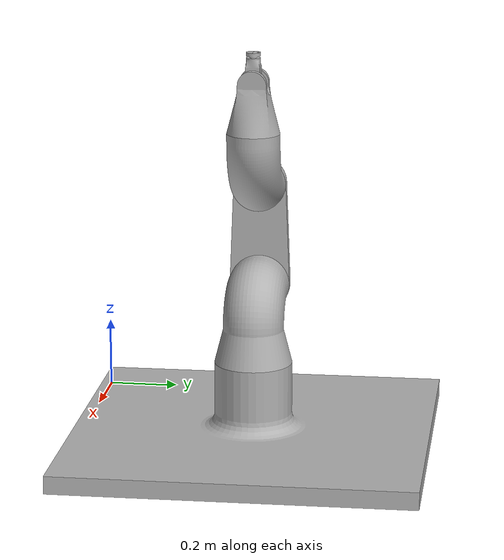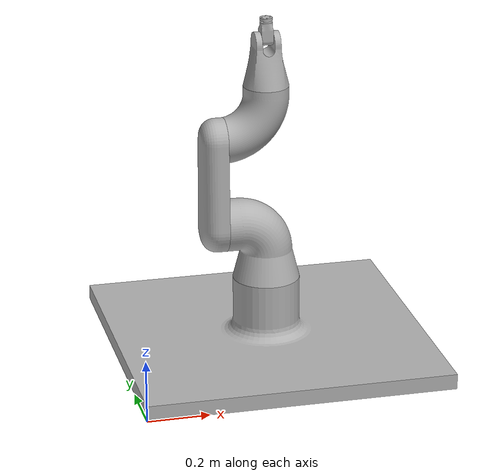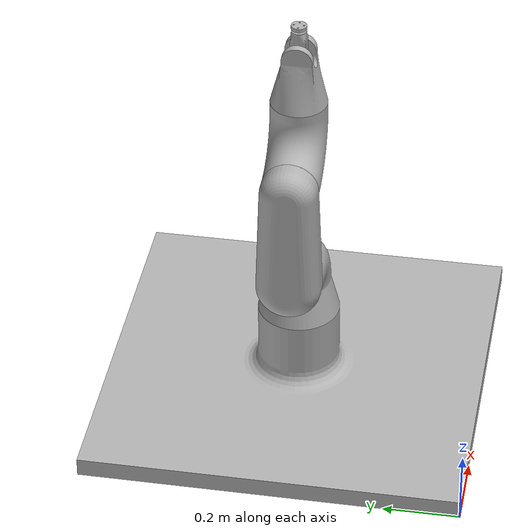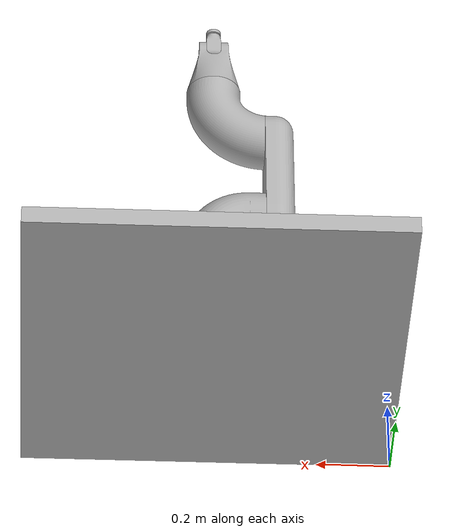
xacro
<?xml version="1.0" ?>
<robot name="g05" xmlns:xacro="http://www.ros.org/wiki/xacro">

<xacro:include filename="$(find g05)/urdf/materials.xacro" />
<xacro:include filename="$(find g05)/urdf/g05.trans" />
<xacro:include filename="$(find g05)/urdf/g05.gazebo" />

<link name="dummy">
  <pose> 0 0 0 0 0 0 </pose>
</link>

<joint name="dummy_joint" type="fixed">
  <parent link="dummy"/>
  <child link= "base_link"/>
</joint>

<link name="base_link">
  <inertial>
    <origin xyz="0.500000000000011 0.5000000000000001 0.03990961156333847" rpy="0 0 0"/>
    <mass value="449.9286565512495"/>
    <inertia ixx="33.833339" iyy="33.833339" izz="65.771249" ixy="0.0" iyz="0.0" ixz="-0.0"/>
  </inertial>
  <visual>
    <origin xyz="0 0 0" rpy="0 0 0"/>
    <geometry>
      <mesh filename="package://g05/meshes/base_link.stl" scale="0.001 0.001 0.001"/>
    </geometry>
    <material name="silver"/>
  </visual>
  <collision>
    <origin xyz="0 0 0" rpy="0 0 0"/>
    <geometry>
      <mesh filename="package://g05/meshes/base_link.stl" scale="0.001 0.001 0.001"/>
    </geometry>
  </collision>
</link>

<link name="Revolute_2_1">
  <inertial>
    <origin xyz="-0.02796233135417625 -5.434556427097448e-08 0.07271650387425044" rpy="0 0 0"/>
    <mass value="7.57485731682547"/>
    <inertia ixx="0.056149" iyy="0.066668" izz="0.04146" ixy="-0.0" iyz="-0.0" ixz="0.014556"/>
  </inertial>
  <visual>
    <origin xyz="-0.5 -0.5 -0.2875" rpy="0 0 0"/>
    <geometry>
      <mesh filename="package://g05/meshes/Revolute_2_1.stl" scale="0.001 0.001 0.001"/>
    </geometry>
    <material name="silver"/>
  </visual>
  <collision>
    <origin xyz="-0.5 -0.5 -0.2875" rpy="0 0 0"/>
    <geometry>
      <mesh filename="package://g05/meshes/Revolute_2_1.stl" scale="0.001 0.001 0.001"/>
    </geometry>
  </collision>
</link>

<link name="Revolute_3_1">
  <inertial>
    <origin xyz="0.014413868593585288 2.744690474898448e-07 0.13813231624974515" rpy="0 0 0"/>
    <mass value="4.960455877927692"/>
    <inertia ixx="0.078668" iyy="0.072525" izz="0.01127" ixy="-0.0" iyz="0.0" ixz="-0.000768"/>
  </inertial>
  <visual>
    <origin xyz="-0.312 -0.5 -0.426066" rpy="0 0 0"/>
    <geometry>
      <mesh filename="package://g05/meshes/Revolute_3_1.stl" scale="0.001 0.001 0.001"/>
    </geometry>
    <material name="silver"/>
  </visual>
  <collision>
    <origin xyz="-0.312 -0.5 -0.426066" rpy="0 0 0"/>
    <geometry>
      <mesh filename="package://g05/meshes/Revolute_3_1.stl" scale="0.001 0.001 0.001"/>
    </geometry>
  </collision>
</link>

<link name="Revolute_4_1">
  <inertial>
    <origin xyz="0.05058795204654243 2.74474345363096e-07 0.06441243873672076" rpy="0 0 0"/>
    <mass value="4.521795512874398"/>
    <inertia ixx="0.024373" iyy="0.030228" izz="0.018236" ixy="-0.0" iyz="0.0" ixz="-0.008608"/>
  </inertial>
  <visual>
    <origin xyz="-0.412 -0.5 -0.716066" rpy="0 0 0"/>
    <geometry>
      <mesh filename="package://g05/meshes/Revolute_4_1.stl" scale="0.001 0.001 0.001"/>
    </geometry>
    <material name="silver"/>
  </visual>
  <collision>
    <origin xyz="-0.412 -0.5 -0.716066" rpy="0 0 0"/>
    <geometry>
      <mesh filename="package://g05/meshes/Revolute_4_1.stl" scale="0.001 0.001 0.001"/>
    </geometry>
  </collision>
</link>

<link name="Revolute_5_1">
  <inertial>
    <origin xyz="-6.994329779241859e-07 2.7778302158498747e-07 0.010271401412828673" rpy="0 0 0"/>
    <mass value="1.5444031425616112"/>
    <inertia ixx="0.004247" iyy="0.004332" izz="0.003152" ixy="-0.0" iyz="-0.0" ixz="0.0"/>
  </inertial>
  <visual>
    <origin xyz="-0.499934 -0.5 -0.94" rpy="0 0 0"/>
    <geometry>
      <mesh filename="package://g05/meshes/Revolute_5_1.stl" scale="0.001 0.001 0.001"/>
    </geometry>
    <material name="silver"/>
  </visual>
  <collision>
    <origin xyz="-0.499934 -0.5 -0.94" rpy="0 0 0"/>
    <geometry>
      <mesh filename="package://g05/meshes/Revolute_5_1.stl" scale="0.001 0.001 0.001"/>
    </geometry>
  </collision>
</link>

<link name="end_effector_1">
  <inertial>
    <origin xyz="4.928266761905498e-07 -2.7460793233791136e-07 0.022999999999999687" rpy="0 0 0"/>
    <mass value="0.02081305133003231"/>
    <inertia ixx="4e-06" iyy="4e-06" izz="3e-06" ixy="0.0" iyz="0.0" ixz="-0.0"/>
  </inertial>
  <visual>
    <origin xyz="-0.499934 -0.5 -1.08" rpy="0 0 0"/>
    <geometry>
      <mesh filename="package://g05/meshes/end_effector_1.stl" scale="0.001 0.001 0.001"/>
    </geometry>
    <material name="silver"/>
  </visual>
  <collision>
    <origin xyz="-0.499934 -0.5 -1.08" rpy="0 0 0"/>
    <geometry>
      <mesh filename="package://g05/meshes/end_effector_1.stl" scale="0.001 0.001 0.001"/>
    </geometry>
  </collision>
</link>

<link name="Revolute_6_1">
  <inertial>
    <origin xyz="0.03497844973052605 -4.9620073327982794e-08 0.009209509656326942" rpy="0 0 0"/>
    <mass value="0.12916779249875357"/>
    <inertia ixx="6.2e-05" iyy="7.6e-05" izz="4.4e-05" ixy="0.0" iyz="0.0" ixz="-0.0"/>
  </inertial>
  <visual>
    <origin xyz="-0.464934 -0.5 -1.05" rpy="0 0 0"/>
    <geometry>
      <mesh filename="package://g05/meshes/Revolute_6_1.stl" scale="0.001 0.001 0.001"/>
    </geometry>
    <material name="silver"/>
  </visual>
  <collision>
    <origin xyz="-0.464934 -0.5 -1.05" rpy="0 0 0"/>
    <geometry>
      <mesh filename="package://g05/meshes/Revolute_6_1.stl" scale="0.001 0.001 0.001"/>
    </geometry>
  </collision>
</link>

<joint name="Revolute_1" type="continuous">
  <origin xyz="0.5 0.5 0.2875" rpy="0 0 0"/>
  <parent link="base_link"/>
  <child link="Revolute_2_1"/>
  <axis xyz="0.0 0.0 1.0"/>
</joint>

<joint name="Revolute_2" type="continuous">
  <origin xyz="-0.188 0.0 0.138566" rpy="0 0 0"/>
  <parent link="Revolute_2_1"/>
  <child link="Revolute_3_1"/>
  <axis xyz="-1.0 0.0 0.0"/>

</joint>

<joint name="Revolute_3" type="continuous">
  <origin xyz="0.1 0.0 0.29" rpy="0 0 0"/>
  <parent link="Revolute_3_1"/>
  <child link="Revolute_4_1"/>
  <axis xyz="1.0 0.0 0.0"/>
</joint>

<joint name="Revolute_4" type="continuous">
  <origin xyz="0.087934 0.0 0.223934" rpy="0 0 0"/>
  <parent link="Revolute_4_1"/>
  <child link="Revolute_5_1"/>
  <axis xyz="0.0 0.0 1.0"/>
</joint>

<joint name="Revolute_7" type="continuous">
  <origin xyz="0.035 0.0 0.03" rpy="0 0 0"/>
  <parent link="Revolute_6_1"/>
  <child link="end_effector_1"/>
  <axis xyz="0.0 0.0 1.0"/>
</joint>

<joint name="Revolute_5" type="continuous">
  <origin xyz="-0.035 0.0 0.11" rpy="0 0 0"/>
  <parent link="Revolute_5_1"/>
  <child link="Revolute_6_1"/>
  <axis xyz="1.0 0.0 0.0"/>

</joint>

</robot>

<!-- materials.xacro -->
<robot name="g05" xmlns:xacro="http://www.ros.org/wiki/xacro" >

<material name="silver">
  <color rgba="0.700 0.700 0.700 1.000"/>
</material>

</robot>

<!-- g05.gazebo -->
<robot name="g05" xmlns:xacro="http://www.ros.org/wiki/xacro" >

<xacro:property name="body_color" value="Gazebo/Silver" />

<gazebo>
 <plugin name="gazebo_ros_control" filename="libgazebo_ros_control.so">
 <robotNamespace>/g05</robotNamespace>
 <robotSimType>gazebo_ros_control/DefaultRobotHWSim</robotSimType>
 <legacyModeNS>true</legacyModeNS>
 </plugin>
 </gazebo>
<gazebo reference="base_link">
  <material>${body_color}</material>
  <mu1>5</mu1>
  <mu2>5</mu2>
  <selfCollide>true</selfCollide>
  <gravity>true</gravity>
</gazebo>

<gazebo reference="Revolute_2_1">
  <material>${body_color}</material>
  <mu1>0.2</mu1>
  <mu2>0.2</mu2>
  <selfCollide>true</selfCollide>
</gazebo>

<gazebo reference="Revolute_3_1">
  <material>${body_color}</material>
  <mu1>0.2</mu1>
  <mu2>0.2</mu2>
  <selfCollide>true</selfCollide>
</gazebo>

<gazebo reference="Revolute_4_1">
  <material>${body_color}</material>
  <mu1>0.2</mu1>
  <mu2>0.2</mu2>
  <selfCollide>true</selfCollide>
</gazebo>

<gazebo reference="Revolute_5_1">
  <material>${body_color}</material>
  <mu1>0.2</mu1>
  <mu2>0.2</mu2>
  <selfCollide>true</selfCollide>
</gazebo>

<gazebo reference="Revolute_6_1">
  <material>${body_color}</material>
  <mu1>0.2</mu1>
  <mu2>0.2</mu2>
  <selfCollide>true</selfCollide>
</gazebo>

<gazebo reference="end_effector_1">
  <material>${body_color}</material>
  <mu1>0.2</mu1>
  <mu2>0.2</mu2>
  <selfCollide>true</selfCollide>
</gazebo>

</robot>
